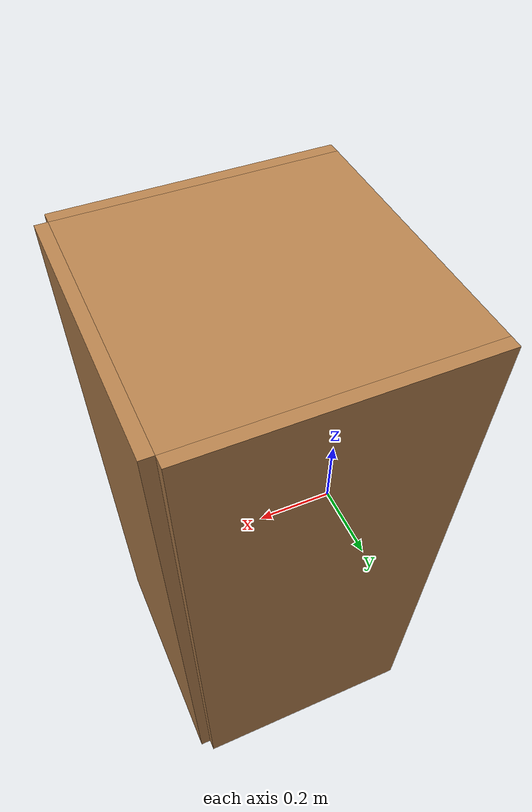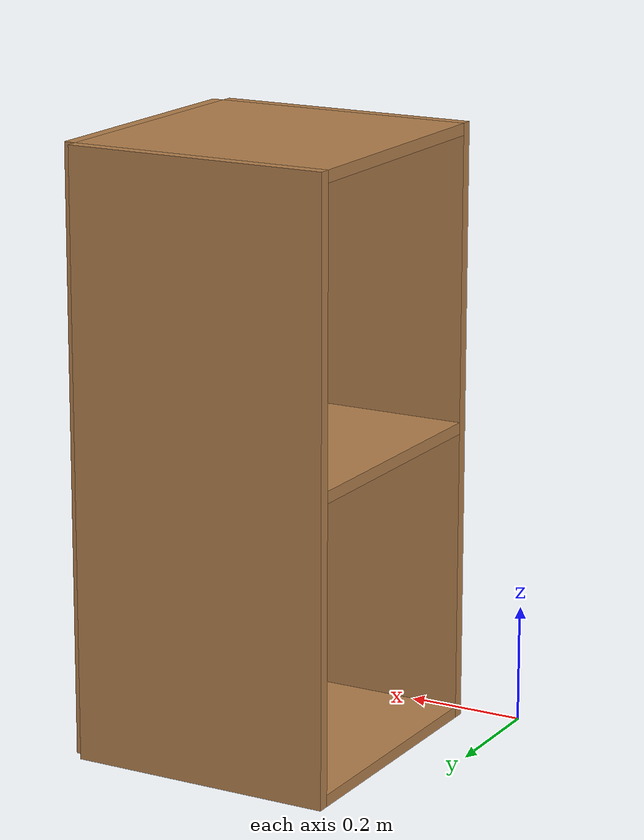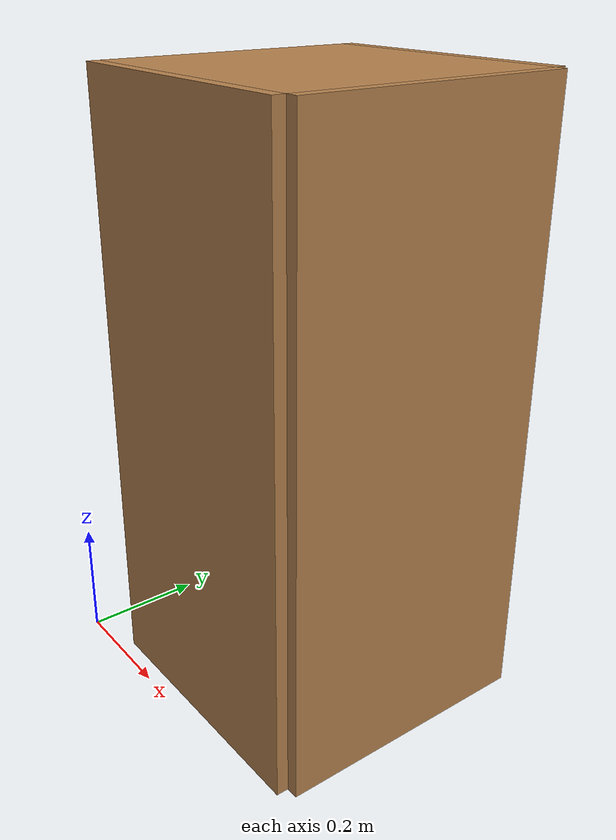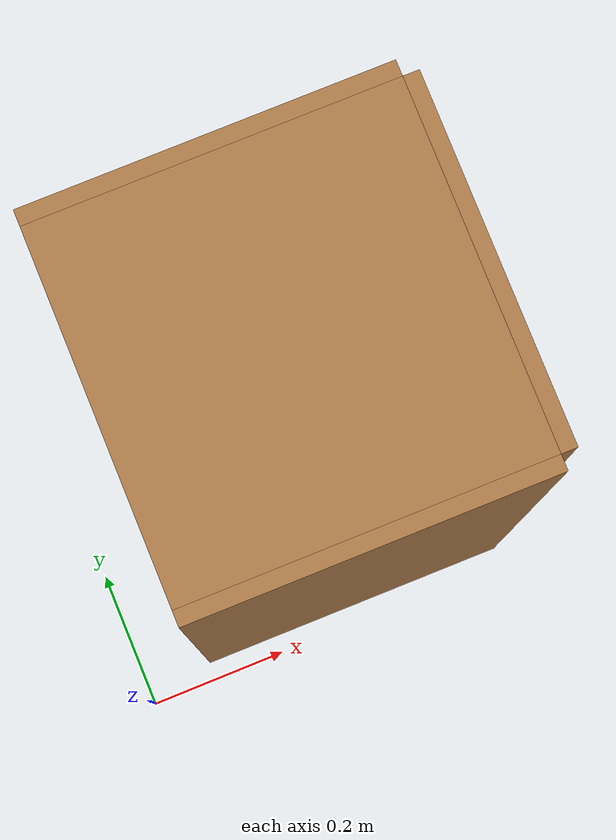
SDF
<sdf version="1.7">
 <world name="default">
  <model name="cabinet">
   <static>1</static>
   <link name="cabinet_bottom_plate">
    <inertial>
     <pose>0 0 -1 0 -0 0</pose>
     <inertia><ixx>2.05</ixx><ixy>0</ixy><ixz>0</ixz><iyy>2.05</iyy><iyz>0</iyz><izz>2.05</izz></inertia>
     <mass>25</mass>
    </inertial>
    <collision name="cabinet_bottom_plate_geom">
     <pose>0 0 0.01 0 -0 0</pose>
     <geometry><box><size>0.45 0.45 0.02</size></box></geometry>
    </collision>
    <visual name="cabinet_bottom_plate_geom_visual">
     <pose>0 0 0.01 0 -0 0</pose>
     <geometry><box><size>0.45 0.45 0.02</size></box></geometry>
     <material>
      <script><uri>file://media/materials/scripts/gazebo.material</uri><name>Gazebo/Wood</name></script>
     </material>
    </visual>
    <collision name="cabinet_bottom_plate_geom_cabinet_back_plate">
     <pose>0.235 0 0.51 0 -0 0</pose>
     <geometry><box><size>0.02 0.45 1.02</size></box></geometry>
    </collision>
    <visual name="cabinet_bottom_plate_geom_cabinet_back_plate_visual">
     <pose>0.235 0 0.51 0 -0 0</pose>
     <geometry><box><size>0.02 0.45 1.02</size></box></geometry>
     <material>
      <script><uri>file://media/materials/scripts/gazebo.material</uri><name>Gazebo/Wood</name></script>
     </material>
    </visual>
    <collision name="cabinet_bottom_plate_geom_cabinet_left_plate">
     <pose>0 0.235 0.51 0 -0 0</pose>
     <geometry><box><size>0.45 0.02 1.02</size></box></geometry>
    </collision>
    <visual name="cabinet_bottom_plate_geom_cabinet_left_plate_visual">
     <pose>0 0.235 0.51 0 -0 0</pose>
     <geometry><box><size>0.45 0.02 1.02</size></box></geometry>
     <material>
      <script><uri>file://media/materials/scripts/gazebo.material</uri><name>Gazebo/Wood</name></script>
     </material>
    </visual>
    <collision name="cabinet_bottom_plate_geom_cabinet_middle_plate">
     <pose>0 0 0.51 0 -0 0</pose>
     <geometry><box><size>0.45 0.45 0.02</size></box></geometry>
    </collision>
    <visual name="cabinet_bottom_plate_geom_cabinet_middle_plate_visual">
     <pose>0 0 0.51 0 -0 0</pose>
     <geometry><box><size>0.45 0.45 0.02</size></box></geometry>
     <material>
      <script><uri>file://media/materials/scripts/gazebo.material</uri><name>Gazebo/Wood</name></script>
     </material>
    </visual>
    <collision name="cabinet_bottom_plate_geom_cabinet_right_plate">
     <pose>0 -0.235 0.51 0 -0 0</pose>
     <geometry><box><size>0.45 0.02 1.02</size></box></geometry>
    </collision>
    <visual name="cabinet_bottom_plate_geom_cabinet_right_plate_visual">
     <pose>0 -0.235 0.51 0 -0 0</pose>
     <geometry><box><size>0.45 0.02 1.02</size></box></geometry>
     <material>
      <script><uri>file://media/materials/scripts/gazebo.material</uri><name>Gazebo/Wood</name></script>
     </material>
    </visual>
    <collision name="cabinet_bottom_plate_geom_cabinet_top_plate">
     <pose>0 0 1.01 0 -0 0</pose>
     <geometry><box><size>0.45 0.45 0.02</size></box></geometry>
    </collision>
    <visual name="cabinet_bottom_plate_geom_cabinet_top_plate_visual">
     <pose>0 0 1.01 0 -0 0</pose>
     <geometry><box><size>0.45 0.45 0.02</size></box></geometry>
     <material>
      <script><uri>file://media/materials/scripts/gazebo.material</uri><name>Gazebo/Wood</name></script>
     </material>
    </visual>
   </link>
   <pose>0.321407 0.270446 0 0 -0 0</pose>
  </model>
 </world>
</sdf>
